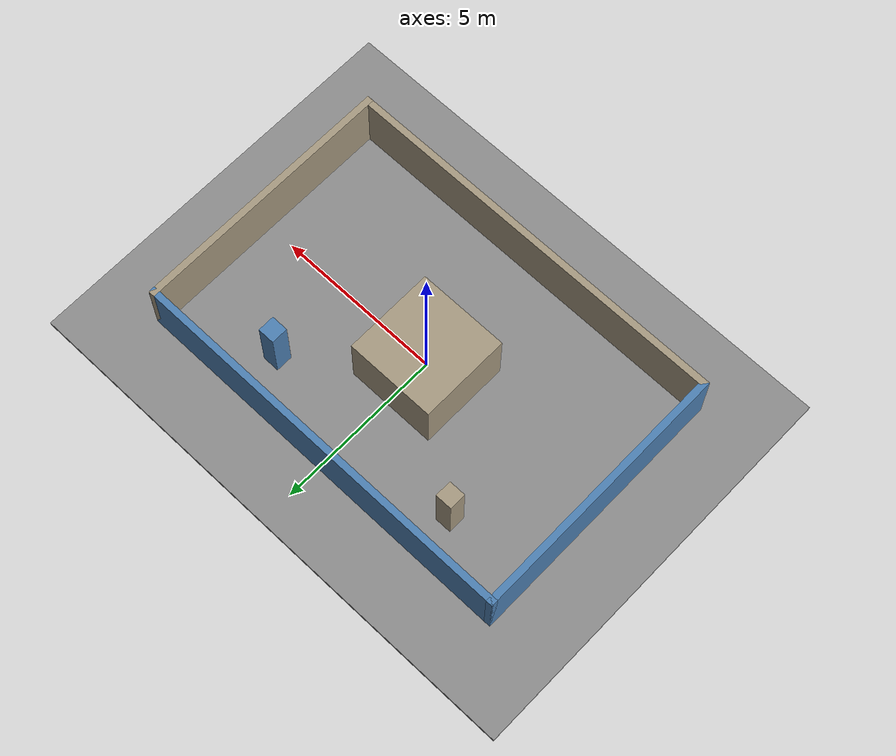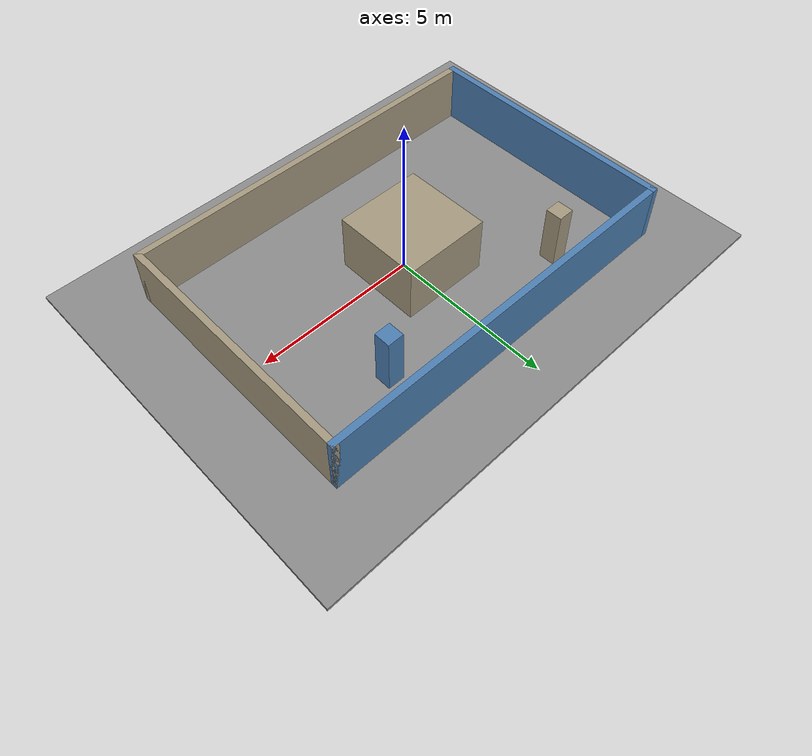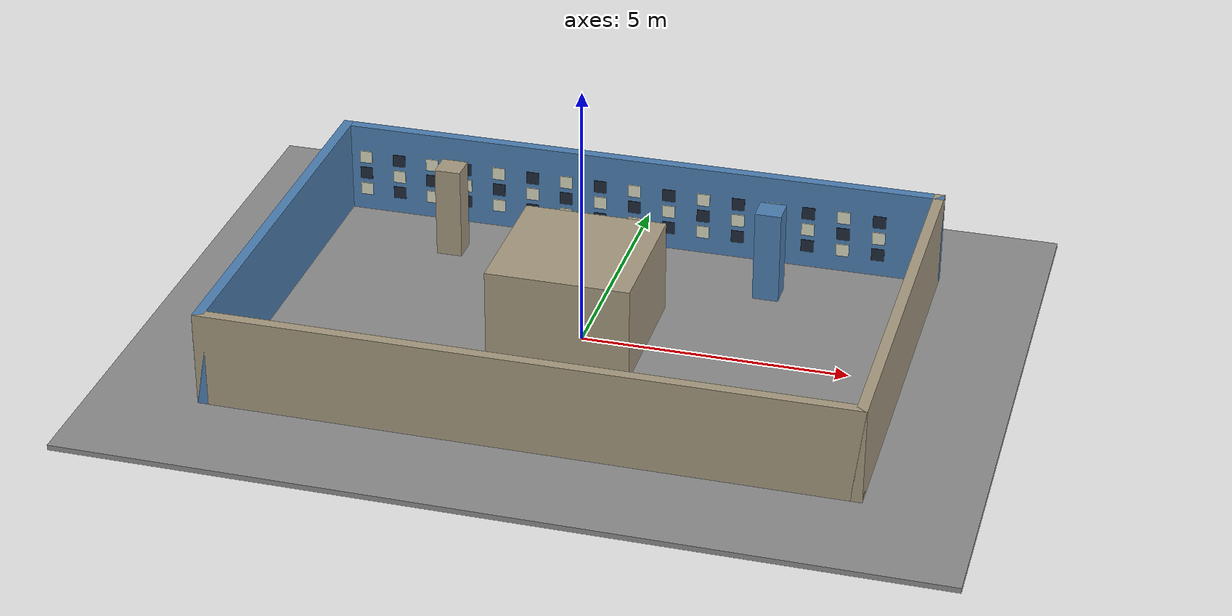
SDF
<?xml version="1.0"?><sdf version="1.6"><world name="dev_asymmetric">
      <physics name="ode" type="ode"><max_step_size>0.002</max_step_size><real_time_update_rate>500</real_time_update_rate></physics>
      <scene><ambient>0.5 0.5 0.5 1</ambient><background>0.2 0.2 0.2 1</background><shadows>false</shadows></scene>
      <light name="sun" type="directional"><pose>0 0 10 0 0 0</pose><diffuse>0.8 0.8 0.8 1</diffuse>
      <specular>0.1 0.1 0.1 1</specular><direction>0.1 0.2 -1</direction><cast_shadows>false</cast_shadows></light>
      <model name="ground"><static>true</static><pose>0 0 -.05 0 0 0</pose><link name="ground">
      <collision name="ground"><geometry><box><size>16 12 .1</size></box></geometry></collision>
      <visual name="ground"><geometry><box><size>16 12 .1</size></box></geometry>
      <material><ambient>0.55 0.55 0.55 1</ambient><diffuse>0.55 0.55 0.55 1</diffuse></material></visual></link></model>
      <model name="wall_0"><static>true</static>
      <pose>-5.9 0.0 0.9 0 0 0</pose><link name="body">
      <collision name="collision"><geometry><box><size>0.20000000000000018 8 1.8</size></box></geometry></collision>
      <visual name="visual"><geometry><box><size>0.20000000000000018 8 1.8</size></box></geometry>
      <material><ambient>0.3 0.5 0.7 1</ambient><diffuse>0.3 0.5 0.7 1</diffuse></material></visual>
      </link></model><model name="wall_1"><static>true</static>
      <pose>5.9 0.0 0.9 0 0 0</pose><link name="body">
      <collision name="collision"><geometry><box><size>0.20000000000000018 8 1.8</size></box></geometry></collision>
      <visual name="visual"><geometry><box><size>0.20000000000000018 8 1.8</size></box></geometry>
      <material><ambient>0.65 0.60 0.5 1</ambient><diffuse>0.65 0.60 0.5 1</diffuse></material></visual>
      </link></model><model name="wall_2"><static>true</static>
      <pose>0.0 -3.9 0.9 0 0 0</pose><link name="body">
      <collision name="collision"><geometry><box><size>12 0.20000000000000018 1.8</size></box></geometry></collision>
      <visual name="visual"><geometry><box><size>12 0.20000000000000018 1.8</size></box></geometry>
      <material><ambient>0.65 0.60 0.5 1</ambient><diffuse>0.65 0.60 0.5 1</diffuse></material></visual>
      </link></model><model name="wall_3"><static>true</static>
      <pose>0.0 3.9 0.9 0 0 0</pose><link name="body">
      <collision name="collision"><geometry><box><size>12 0.20000000000000018 1.8</size></box></geometry></collision>
      <visual name="visual"><geometry><box><size>12 0.20000000000000018 1.8</size></box></geometry>
      <material><ambient>0.3 0.5 0.7 1</ambient><diffuse>0.3 0.5 0.7 1</diffuse></material></visual>
      </link></model><model name="wall_4"><static>true</static>
      <pose>-0.15000000000000002 0.15000000000000002 0.9 0 0 0</pose><link name="body">
      <collision name="collision"><geometry><box><size>2.7 2.7 1.8</size></box></geometry></collision>
      <visual name="visual"><geometry><box><size>2.7 2.7 1.8</size></box></geometry>
      <material><ambient>0.65 0.60 0.5 1</ambient><diffuse>0.65 0.60 0.5 1</diffuse></material></visual>
      </link></model><model name="wall_5"><static>true</static>
      <pose>-3.35 2.65 0.9 0 0 0</pose><link name="body">
      <collision name="collision"><geometry><box><size>0.5 0.5 1.8</size></box></geometry></collision>
      <visual name="visual"><geometry><box><size>0.5 0.5 1.8</size></box></geometry>
      <material><ambient>0.65 0.60 0.5 1</ambient><diffuse>0.65 0.60 0.5 1</diffuse></material></visual>
      </link></model><model name="wall_6"><static>true</static>
      <pose>2.95 2.55 0.9 0 0 0</pose><link name="body">
      <collision name="collision"><geometry><box><size>0.5 0.5 1.8</size></box></geometry></collision>
      <visual name="visual"><geometry><box><size>0.5 0.5 1.8</size></box></geometry>
      <material><ambient>0.3 0.5 0.7 1</ambient><diffuse>0.3 0.5 0.7 1</diffuse></material></visual>
      </link></model><model name="panel_0_0"><static>true</static>
              <pose>-5.5 3.795 0.45 0 0 0</pose><link name="visual_only">
              <visual name="panel"><geometry><box><size>.25 .01 .25</size></box></geometry>
              <material><ambient>0.85 0.85 0.75 1</ambient><diffuse>0.85 0.85 0.75 1</diffuse></material></visual>
              </link></model><model name="panel_0_1"><static>true</static>
              <pose>-5.5 3.795 0.8 0 0 0</pose><link name="visual_only">
              <visual name="panel"><geometry><box><size>.25 .01 .25</size></box></geometry>
              <material><ambient>0.12 0.16 0.22 1</ambient><diffuse>0.12 0.16 0.22 1</diffuse></material></visual>
              </link></model><model name="panel_0_2"><static>true</static>
              <pose>-5.5 3.795 1.15 0 0 0</pose><link name="visual_only">
              <visual name="panel"><geometry><box><size>.25 .01 .25</size></box></geometry>
              <material><ambient>0.85 0.85 0.75 1</ambient><diffuse>0.85 0.85 0.75 1</diffuse></material></visual>
              </link></model><model name="panel_1_0"><static>true</static>
              <pose>-4.8125 3.795 0.45 0 0 0</pose><link name="visual_only">
              <visual name="panel"><geometry><box><size>.25 .01 .25</size></box></geometry>
              <material><ambient>0.12 0.16 0.22 1</ambient><diffuse>0.12 0.16 0.22 1</diffuse></material></visual>
              </link></model><model name="panel_1_1"><static>true</static>
              <pose>-4.8125 3.795 0.8 0 0 0</pose><link name="visual_only">
              <visual name="panel"><geometry><box><size>.25 .01 .25</size></box></geometry>
              <material><ambient>0.85 0.85 0.75 1</ambient><diffuse>0.85 0.85 0.75 1</diffuse></material></visual>
              </link></model><model name="panel_1_2"><static>true</static>
              <pose>-4.8125 3.795 1.15 0 0 0</pose><link name="visual_only">
              <visual name="panel"><geometry><box><size>.25 .01 .25</size></box></geometry>
              <material><ambient>0.12 0.16 0.22 1</ambient><diffuse>0.12 0.16 0.22 1</diffuse></material></visual>
              </link></model><model name="panel_2_0"><static>true</static>
              <pose>-4.125 3.795 0.45 0 0 0</pose><link name="visual_only">
              <visual name="panel"><geometry><box><size>.25 .01 .25</size></box></geometry>
              <material><ambient>0.85 0.85 0.75 1</ambient><diffuse>0.85 0.85 0.75 1</diffuse></material></visual>
              </link></model><model name="panel_2_1"><static>true</static>
              <pose>-4.125 3.795 0.8 0 0 0</pose><link name="visual_only">
              <visual name="panel"><geometry><box><size>.25 .01 .25</size></box></geometry>
              <material><ambient>0.12 0.16 0.22 1</ambient><diffuse>0.12 0.16 0.22 1</diffuse></material></visual>
              </link></model><model name="panel_2_2"><static>true</static>
              <pose>-4.125 3.795 1.15 0 0 0</pose><link name="visual_only">
              <visual name="panel"><geometry><box><size>.25 .01 .25</size></box></geometry>
              <material><ambient>0.85 0.85 0.75 1</ambient><diffuse>0.85 0.85 0.75 1</diffuse></material></visual>
              </link></model><model name="panel_3_0"><static>true</static>
              <pose>-3.4375 3.795 0.45 0 0 0</pose><link name="visual_only">
              <visual name="panel"><geometry><box><size>.25 .01 .25</size></box></geometry>
              <material><ambient>0.12 0.16 0.22 1</ambient><diffuse>0.12 0.16 0.22 1</diffuse></material></visual>
              </link></model><model name="panel_3_1"><static>true</static>
              <pose>-3.4375 3.795 0.8 0 0 0</pose><link name="visual_only">
              <visual name="panel"><geometry><box><size>.25 .01 .25</size></box></geometry>
              <material><ambient>0.85 0.85 0.75 1</ambient><diffuse>0.85 0.85 0.75 1</diffuse></material></visual>
              </link></model><model name="panel_3_2"><static>true</static>
              <pose>-3.4375 3.795 1.15 0 0 0</pose><link name="visual_only">
              <visual name="panel"><geometry><box><size>.25 .01 .25</size></box></geometry>
              <material><ambient>0.12 0.16 0.22 1</ambient><diffuse>0.12 0.16 0.22 1</diffuse></material></visual>
              </link></model><model name="panel_4_0"><static>true</static>
              <pose>-2.75 3.795 0.45 0 0 0</pose><link name="visual_only">
              <visual name="panel"><geometry><box><size>.25 .01 .25</size></box></geometry>
              <material><ambient>0.85 0.85 0.75 1</ambient><diffuse>0.85 0.85 0.75 1</diffuse></material></visual>
              </link></model><model name="panel_4_1"><static>true</static>
              <pose>-2.75 3.795 0.8 0 0 0</pose><link name="visual_only">
              <visual name="panel"><geometry><box><size>.25 .01 .25</size></box></geometry>
              <material><ambient>0.12 0.16 0.22 1</ambient><diffuse>0.12 0.16 0.22 1</diffuse></material></visual>
              </link></model><model name="panel_4_2"><static>true</static>
              <pose>-2.75 3.795 1.15 0 0 0</pose><link name="visual_only">
              <visual name="panel"><geometry><box><size>.25 .01 .25</size></box></geometry>
              <material><ambient>0.85 0.85 0.75 1</ambient><diffuse>0.85 0.85 0.75 1</diffuse></material></visual>
              </link></model><model name="panel_5_0"><static>true</static>
              <pose>-2.0625 3.795 0.45 0 0 0</pose><link name="visual_only">
              <visual name="panel"><geometry><box><size>.25 .01 .25</size></box></geometry>
              <material><ambient>0.12 0.16 0.22 1</ambient><diffuse>0.12 0.16 0.22 1</diffuse></material></visual>
              </link></model><model name="panel_5_1"><static>true</static>
              <pose>-2.0625 3.795 0.8 0 0 0</pose><link name="visual_only">
              <visual name="panel"><geometry><box><size>.25 .01 .25</size></box></geometry>
              <material><ambient>0.85 0.85 0.75 1</ambient><diffuse>0.85 0.85 0.75 1</diffuse></material></visual>
              </link></model><model name="panel_5_2"><static>true</static>
              <pose>-2.0625 3.795 1.15 0 0 0</pose><link name="visual_only">
              <visual name="panel"><geometry><box><size>.25 .01 .25</size></box></geometry>
              <material><ambient>0.12 0.16 0.22 1</ambient><diffuse>0.12 0.16 0.22 1</diffuse></material></visual>
              </link></model><model name="panel_6_0"><static>true</static>
              <pose>-1.375 3.795 0.45 0 0 0</pose><link name="visual_only">
              <visual name="panel"><geometry><box><size>.25 .01 .25</size></box></geometry>
              <material><ambient>0.85 0.85 0.75 1</ambient><diffuse>0.85 0.85 0.75 1</diffuse></material></visual>
              </link></model><model name="panel_6_1"><static>true</static>
              <pose>-1.375 3.795 0.8 0 0 0</pose><link name="visual_only">
              <visual name="panel"><geometry><box><size>.25 .01 .25</size></box></geometry>
              <material><ambient>0.12 0.16 0.22 1</ambient><diffuse>0.12 0.16 0.22 1</diffuse></material></visual>
              </link></model><model name="panel_6_2"><static>true</static>
              <pose>-1.375 3.795 1.15 0 0 0</pose><link name="visual_only">
              <visual name="panel"><geometry><box><size>.25 .01 .25</size></box></geometry>
              <material><ambient>0.85 0.85 0.75 1</ambient><diffuse>0.85 0.85 0.75 1</diffuse></material></visual>
              </link></model><model name="panel_7_0"><static>true</static>
              <pose>-0.6875 3.795 0.45 0 0 0</pose><link name="visual_only">
              <visual name="panel"><geometry><box><size>.25 .01 .25</size></box></geometry>
              <material><ambient>0.12 0.16 0.22 1</ambient><diffuse>0.12 0.16 0.22 1</diffuse></material></visual>
              </link></model><model name="panel_7_1"><static>true</static>
              <pose>-0.6875 3.795 0.8 0 0 0</pose><link name="visual_only">
              <visual name="panel"><geometry><box><size>.25 .01 .25</size></box></geometry>
              <material><ambient>0.85 0.85 0.75 1</ambient><diffuse>0.85 0.85 0.75 1</diffuse></material></visual>
              </link></model><model name="panel_7_2"><static>true</static>
              <pose>-0.6875 3.795 1.15 0 0 0</pose><link name="visual_only">
              <visual name="panel"><geometry><box><size>.25 .01 .25</size></box></geometry>
              <material><ambient>0.12 0.16 0.22 1</ambient><diffuse>0.12 0.16 0.22 1</diffuse></material></visual>
              </link></model><model name="panel_8_0"><static>true</static>
              <pose>0.0 3.795 0.45 0 0 0</pose><link name="visual_only">
              <visual name="panel"><geometry><box><size>.25 .01 .25</size></box></geometry>
              <material><ambient>0.85 0.85 0.75 1</ambient><diffuse>0.85 0.85 0.75 1</diffuse></material></visual>
              </link></model><model name="panel_8_1"><static>true</static>
              <pose>0.0 3.795 0.8 0 0 0</pose><link name="visual_only">
              <visual name="panel"><geometry><box><size>.25 .01 .25</size></box></geometry>
              <material><ambient>0.12 0.16 0.22 1</ambient><diffuse>0.12 0.16 0.22 1</diffuse></material></visual>
              </link></model><model name="panel_8_2"><static>true</static>
              <pose>0.0 3.795 1.15 0 0 0</pose><link name="visual_only">
              <visual name="panel"><geometry><box><size>.25 .01 .25</size></box></geometry>
              <material><ambient>0.85 0.85 0.75 1</ambient><diffuse>0.85 0.85 0.75 1</diffuse></material></visual>
              </link></model><model name="panel_9_0"><static>true</static>
              <pose>0.6875 3.795 0.45 0 0 0</pose><link name="visual_only">
              <visual name="panel"><geometry><box><size>.25 .01 .25</size></box></geometry>
              <material><ambient>0.12 0.16 0.22 1</ambient><diffuse>0.12 0.16 0.22 1</diffuse></material></visual>
              </link></model><model name="panel_9_1"><static>true</static>
              <pose>0.6875 3.795 0.8 0 0 0</pose><link name="visual_only">
              <visual name="panel"><geometry><box><size>.25 .01 .25</size></box></geometry>
              <material><ambient>0.85 0.85 0.75 1</ambient><diffuse>0.85 0.85 0.75 1</diffuse></material></visual>
              </link></model><model name="panel_9_2"><static>true</static>
              <pose>0.6875 3.795 1.15 0 0 0</pose><link name="visual_only">
              <visual name="panel"><geometry><box><size>.25 .01 .25</size></box></geometry>
              <material><ambient>0.12 0.16 0.22 1</ambient><diffuse>0.12 0.16 0.22 1</diffuse></material></visual>
              </link></model><model name="panel_10_0"><static>true</static>
              <pose>1.375 3.795 0.45 0 0 0</pose><link name="visual_only">
              <visual name="panel"><geometry><box><size>.25 .01 .25</size></box></geometry>
              <material><ambient>0.85 0.85 0.75 1</ambient><diffuse>0.85 0.85 0.75 1</diffuse></material></visual>
              </link></model><model name="panel_10_1"><static>true</static>
              <pose>1.375 3.795 0.8 0 0 0</pose><link name="visual_only">
              <visual name="panel"><geometry><box><size>.25 .01 .25</size></box></geometry>
              <material><ambient>0.12 0.16 0.22 1</ambient><diffuse>0.12 0.16 0.22 1</diffuse></material></visual>
              </link></model><model name="panel_10_2"><static>true</static>
              <pose>1.375 3.795 1.15 0 0 0</pose><link name="visual_only">
              <visual name="panel"><geometry><box><size>.25 .01 .25</size></box></geometry>
              <material><ambient>0.85 0.85 0.75 1</ambient><diffuse>0.85 0.85 0.75 1</diffuse></material></visual>
              </link></model><model name="panel_11_0"><static>true</static>
              <pose>2.0625 3.795 0.45 0 0 0</pose><link name="visual_only">
              <visual name="panel"><geometry><box><size>.25 .01 .25</size></box></geometry>
              <material><ambient>0.12 0.16 0.22 1</ambient><diffuse>0.12 0.16 0.22 1</diffuse></material></visual>
              </link></model><model name="panel_11_1"><static>true</static>
              <pose>2.0625 3.795 0.8 0 0 0</pose><link name="visual_only">
              <visual name="panel"><geometry><box><size>.25 .01 .25</size></box></geometry>
              <material><ambient>0.85 0.85 0.75 1</ambient><diffuse>0.85 0.85 0.75 1</diffuse></material></visual>
              </link></model><model name="panel_11_2"><static>true</static>
              <pose>2.0625 3.795 1.15 0 0 0</pose><link name="visual_only">
              <visual name="panel"><geometry><box><size>.25 .01 .25</size></box></geometry>
              <material><ambient>0.12 0.16 0.22 1</ambient><diffuse>0.12 0.16 0.22 1</diffuse></material></visual>
              </link></model><model name="panel_12_0"><static>true</static>
              <pose>2.75 3.795 0.45 0 0 0</pose><link name="visual_only">
              <visual name="panel"><geometry><box><size>.25 .01 .25</size></box></geometry>
              <material><ambient>0.85 0.85 0.75 1</ambient><diffuse>0.85 0.85 0.75 1</diffuse></material></visual>
              </link></model><model name="panel_12_1"><static>true</static>
              <pose>2.75 3.795 0.8 0 0 0</pose><link name="visual_only">
              <visual name="panel"><geometry><box><size>.25 .01 .25</size></box></geometry>
              <material><ambient>0.12 0.16 0.22 1</ambient><diffuse>0.12 0.16 0.22 1</diffuse></material></visual>
              </link></model><model name="panel_12_2"><static>true</static>
              <pose>2.75 3.795 1.15 0 0 0</pose><link name="visual_only">
              <visual name="panel"><geometry><box><size>.25 .01 .25</size></box></geometry>
              <material><ambient>0.85 0.85 0.75 1</ambient><diffuse>0.85 0.85 0.75 1</diffuse></material></visual>
              </link></model><model name="panel_13_0"><static>true</static>
              <pose>3.4375 3.795 0.45 0 0 0</pose><link name="visual_only">
              <visual name="panel"><geometry><box><size>.25 .01 .25</size></box></geometry>
              <material><ambient>0.12 0.16 0.22 1</ambient><diffuse>0.12 0.16 0.22 1</diffuse></material></visual>
              </link></model><model name="panel_13_1"><static>true</static>
              <pose>3.4375 3.795 0.8 0 0 0</pose><link name="visual_only">
              <visual name="panel"><geometry><box><size>.25 .01 .25</size></box></geometry>
              <material><ambient>0.85 0.85 0.75 1</ambient><diffuse>0.85 0.85 0.75 1</diffuse></material></visual>
              </link></model><model name="panel_13_2"><static>true</static>
              <pose>3.4375 3.795 1.15 0 0 0</pose><link name="visual_only">
              <visual name="panel"><geometry><box><size>.25 .01 .25</size></box></geometry>
              <material><ambient>0.12 0.16 0.22 1</ambient><diffuse>0.12 0.16 0.22 1</diffuse></material></visual>
              </link></model><model name="panel_14_0"><static>true</static>
              <pose>4.125 3.795 0.45 0 0 0</pose><link name="visual_only">
              <visual name="panel"><geometry><box><size>.25 .01 .25</size></box></geometry>
              <material><ambient>0.85 0.85 0.75 1</ambient><diffuse>0.85 0.85 0.75 1</diffuse></material></visual>
              </link></model><model name="panel_14_1"><static>true</static>
              <pose>4.125 3.795 0.8 0 0 0</pose><link name="visual_only">
              <visual name="panel"><geometry><box><size>.25 .01 .25</size></box></geometry>
              <material><ambient>0.12 0.16 0.22 1</ambient><diffuse>0.12 0.16 0.22 1</diffuse></material></visual>
              </link></model><model name="panel_14_2"><static>true</static>
              <pose>4.125 3.795 1.15 0 0 0</pose><link name="visual_only">
              <visual name="panel"><geometry><box><size>.25 .01 .25</size></box></geometry>
              <material><ambient>0.85 0.85 0.75 1</ambient><diffuse>0.85 0.85 0.75 1</diffuse></material></visual>
              </link></model><model name="panel_15_0"><static>true</static>
              <pose>4.8125 3.795 0.45 0 0 0</pose><link name="visual_only">
              <visual name="panel"><geometry><box><size>.25 .01 .25</size></box></geometry>
              <material><ambient>0.12 0.16 0.22 1</ambient><diffuse>0.12 0.16 0.22 1</diffuse></material></visual>
              </link></model><model name="panel_15_1"><static>true</static>
              <pose>4.8125 3.795 0.8 0 0 0</pose><link name="visual_only">
              <visual name="panel"><geometry><box><size>.25 .01 .25</size></box></geometry>
              <material><ambient>0.85 0.85 0.75 1</ambient><diffuse>0.85 0.85 0.75 1</diffuse></material></visual>
              </link></model><model name="panel_15_2"><static>true</static>
              <pose>4.8125 3.795 1.15 0 0 0</pose><link name="visual_only">
              <visual name="panel"><geometry><box><size>.25 .01 .25</size></box></geometry>
              <material><ambient>0.12 0.16 0.22 1</ambient><diffuse>0.12 0.16 0.22 1</diffuse></material></visual>
              </link></model>
      <plugin name="state" filename="libgazebo_ros_state.so"><update_rate>30</update_rate></plugin>
    </world></sdf>
